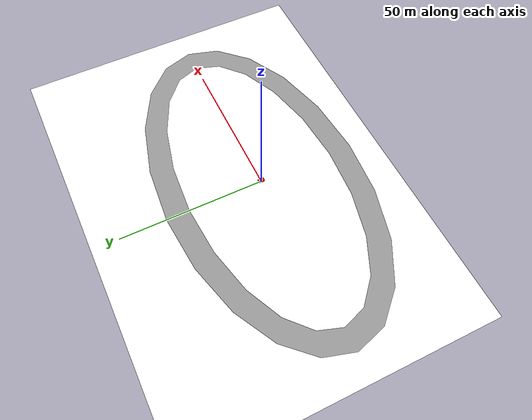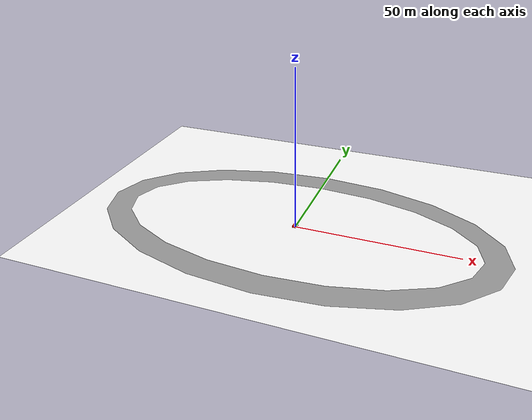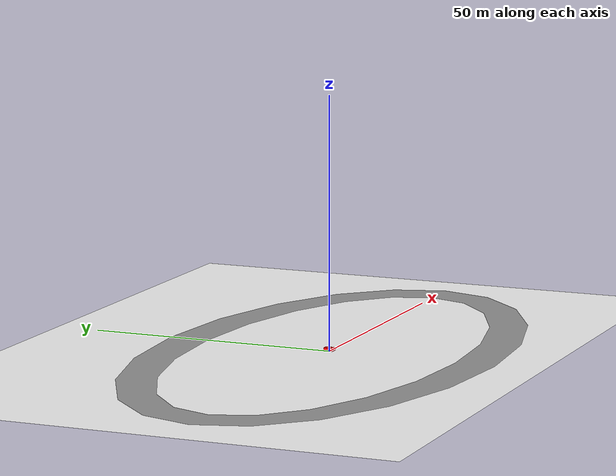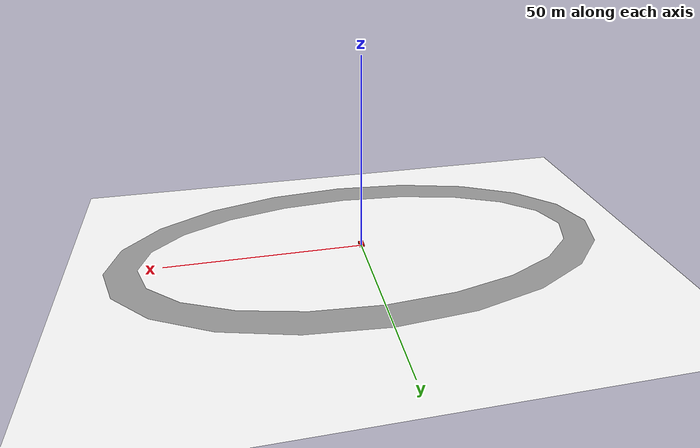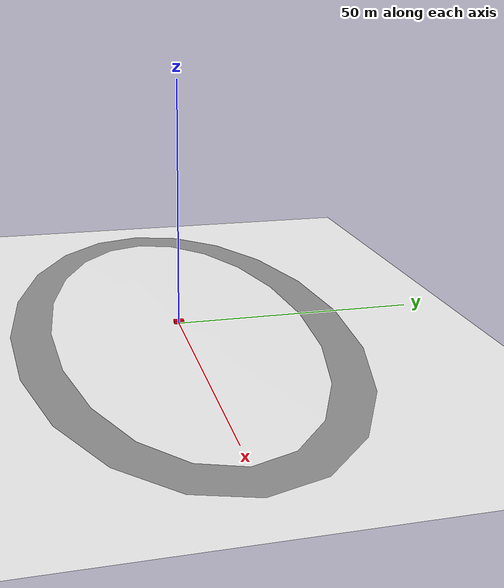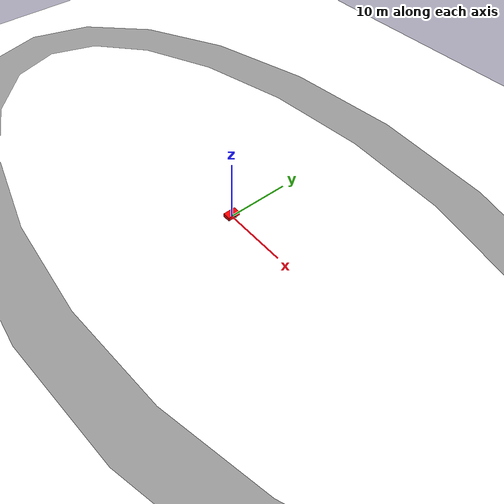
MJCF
<mujoco model="simple_car_track">
    <compiler angle="radian" coordinate="local" inertiafromgeom="true"/>
    <visual>
        <global offwidth="1920" offheight="1080"/>
    </visual>
    <option timestep="0.005" gravity="0 0 -9.81" density="1.2" viscosity="0.00002"/>

    <!-- Contact and solver parameters for stability -->
    <default>
        <geom contype="1" conaffinity="1" condim="3" solref="0.02 1" solimp="0.9 0.95 0.001"/>
        <joint damping="2.0" armature="0.1"/>
    </default>

    <worldbody>
        <!-- Ground plane -->
        <geom name="ground" type="plane" size="100 100 1" pos="0 0 0" rgba="1 1 1 1"/>

        <!-- Track Visuals: A gray outer oval with a white inner oval on top -->
        <geom name="track_outer" type="ellipsoid" pos="0 0 0.01" size="64 34 0.01" rgba="0.6 0.6 0.6 1" contype="0" conaffinity="0"/>
        <geom name="track_inner" type="ellipsoid" pos="0 0 0.02" size="56 26 0.01" rgba="1 1 1 1" contype="0" conaffinity="0"/>

        <!-- Collision walls for lidar detection - simplified as large boxes -->
        <geom name="wall_north" type="box" pos="0 70 1" size="80 5 2" rgba="0 0 0 0" contype="2" conaffinity="2"/>
        <geom name="wall_south" type="box" pos="0 -70 1" size="80 5 2" rgba="0 0 0 0" contype="2" conaffinity="2"/>
        <geom name="wall_east" type="box" pos="70 0 1" size="5 40 2" rgba="0 0 0 0" contype="2" conaffinity="2"/>
        <geom name="wall_west" type="box" pos="-70 0 1" size="5 40 2" rgba="0 0 0 0" contype="2" conaffinity="2"/>
        <!-- Inner walls -->
        <geom name="inner_north" type="box" pos="0 30 1" size="60 2 2" rgba="0 0 0 0" contype="2" conaffinity="2"/>
        <geom name="inner_south" type="box" pos="0 -30 1" size="60 2 2" rgba="0 0 0 0" contype="2" conaffinity="2"/>
        <geom name="inner_east" type="box" pos="60 0 1" size="2 30 2" rgba="0 0 0 0" contype="2" conaffinity="2"/>
        <geom name="inner_west" type="box" pos="-60 0 1" size="2 30 2" rgba="0 0 0 0" contype="2" conaffinity="2"/>

        <!-- Car body -->
        <body name="car" pos="0 0 0.5">
            <joint name="x_slide" type="slide" axis="1 0 0" damping="2.0" armature="0.2"/>
            <joint name="y_slide" type="slide" axis="0 1 0" damping="2.0" armature="0.2"/>
            <joint name="yaw"     type="hinge" axis="0 0 1" damping="1.0" armature="0.1"/>
            <geom name="car_body" type="box" size="0.6 1.0 0.3" mass="150" friction="0.8 0.1 0.05" rgba="1 0 0 1"/>
            <!-- Lidar Geoms Attached to Car Body -->
            <geom name="lidar_ray_0" type="capsule" fromto="0 0 0.2 1 0 0.2" size="0.05" rgba="0 1 0 0.5" contype="0" conaffinity="0"/>
            <geom name="lidar_ray_1" type="capsule" fromto="0 0 0.2 1 0 0.2" size="0.05" rgba="0 1 0 0.5" contype="0" conaffinity="0"/>
            <geom name="lidar_ray_2" type="capsule" fromto="0 0 0.2 1 0 0.2" size="0.05" rgba="0 1 0 0.5" contype="0" conaffinity="0"/>
            <geom name="lidar_ray_3" type="capsule" fromto="0 0 0.2 1 0 0.2" size="0.05" rgba="0 1 0 0.5" contype="0" conaffinity="0"/>
            <geom name="lidar_ray_4" type="capsule" fromto="0 0 0.2 1 0 0.2" size="0.05" rgba="0 1 0 0.5" contype="0" conaffinity="0"/>
            <site name="lidar_tip_0" type="sphere" pos="0 0 0.2" size="0.1" rgba="0 1 0 1"/>
            <site name="lidar_tip_1" type="sphere" pos="0 0 0.2" size="0.1" rgba="0 1 0 1"/>
            <site name="lidar_tip_2" type="sphere" pos="0 0 0.2" size="0.1" rgba="0 1 0 1"/>
            <site name="lidar_tip_3" type="sphere" pos="0 0 0.2" size="0.1" rgba="0 1 0 1"/>
            <site name="lidar_tip_4" type="sphere" pos="0 0 0.2" size="0.1" rgba="0 1 0 1"/>
        </body>

        <!-- Following camera -->
        <camera name="birds_eye" mode="fixed" pos="0 0 60" fovy="90"/>
    </worldbody>

    <actuator>
        <!-- No actuators in XML; applied programmatically -->
    </actuator>
</mujoco>
